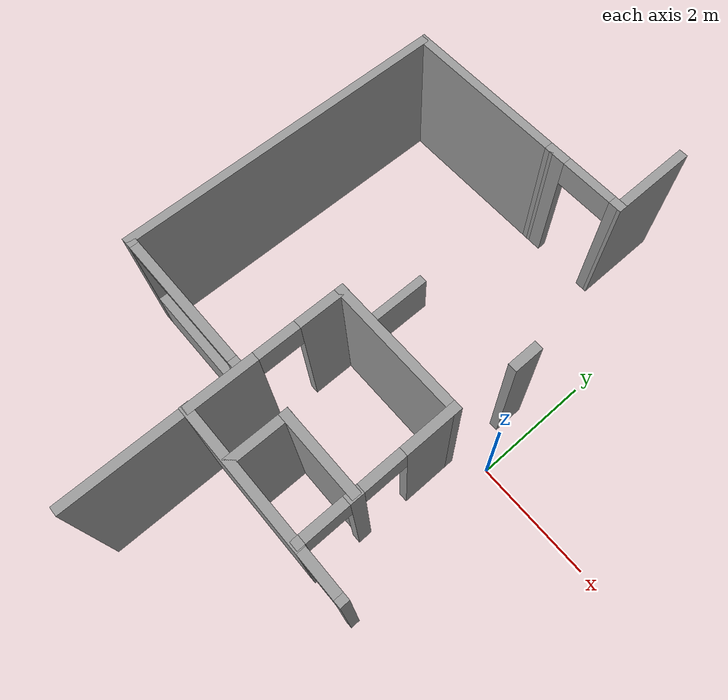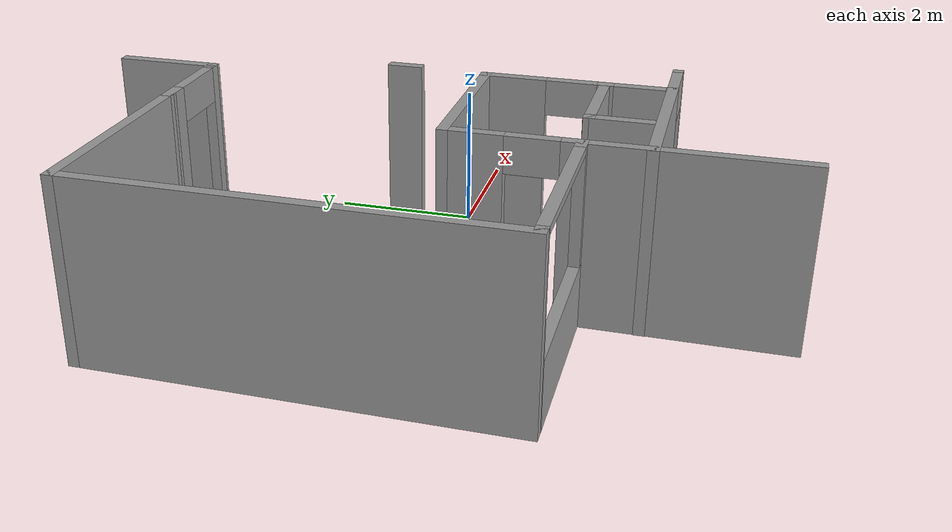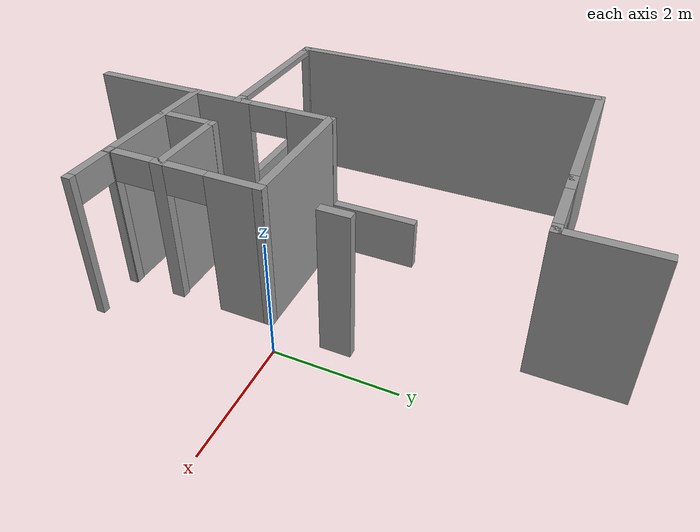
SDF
<sdf version="1.7">
 <model name="Myhouse">
  <link name="Wall_27">
   <pose>-1.25954 -2.94166 0 0 -0 0</pose>
   <visual name="Wall_27_Visual_0">
    <pose>-0.409905 0 1.25 0 -0 0</pose>
    <geometry><box><size>2.43019 0.15 2.5</size></box></geometry>
    <material>
     <script><uri>file://media/materials/scripts/gazebo.material</uri><name>Gazebo/Grey</name></script>
     <ambient>1 1 1 1</ambient>
     <shader type="pixel"/>
    </material>
    <meta><layer>0</layer></meta>
   </visual>
   <visual name="Wall_27_Visual_1">
    <pose>1.56509 0 1.25 0 -0 0</pose>
    <geometry><box><size>0.119811 0.15 2.5</size></box></geometry>
    <material>
     <script><uri>file://media/materials/scripts/gazebo.material</uri><name>Gazebo/Grey</name></script>
     <ambient>1 1 1 1</ambient>
     <shader type="pixel"/>
    </material>
    <meta><layer>0</layer></meta>
   </visual>
   <visual name="Wall_27_Visual_2">
    <pose>1.15519 0 2.25 0 -0 0</pose>
    <geometry><box><size>0.7 0.15 0.5</size></box></geometry>
    <material>
     <script><uri>file://media/materials/scripts/gazebo.material</uri><name>Gazebo/Grey</name></script>
     <ambient>1 1 1 1</ambient>
     <shader type="pixel"/>
    </material>
    <meta><layer>0</layer></meta>
   </visual>
   <collision name="Wall_27_Collision_0">
    <pose>-0.409905 0 1.25 0 -0 0</pose>
    <geometry><box><size>2.43019 0.15 2.5</size></box></geometry>
    <surface>
     <friction>
      <ode><mu>1</mu><mu2>1</mu2><fdir1>0 0 0</fdir1><slip1>0</slip1><slip2>0</slip2></ode>
      <torsional>
       <coefficient>1</coefficient>
       <patch_radius>0</patch_radius>
       <surface_radius>0</surface_radius>
       <use_patch_radius>1</use_patch_radius>
       <ode><slip>0</slip></ode>
      </torsional>
     </friction>
     <bounce><restitution_coefficient>0</restitution_coefficient><threshold>1e+06</threshold></bounce>
     <contact>
      <collide_without_contact>0</collide_without_contact>
      <collide_without_contact_bitmask>1</collide_without_contact_bitmask>
      <collide_bitmask>1</collide_bitmask>
      <ode>
       <soft_cfm>0</soft_cfm>
       <soft_erp>0.2</soft_erp>
       <kp>1e+13</kp>
       <kd>1</kd>
       <max_vel>0.01</max_vel>
       <min_depth>0</min_depth>
      </ode>
      <bullet>
       <split_impulse>1</split_impulse>
       <split_impulse_penetration_threshold>-0.01</split_impulse_penetration_threshold>
       <soft_cfm>0</soft_cfm>
       <soft_erp>0.2</soft_erp>
       <kp>1e+13</kp>
       <kd>1</kd>
      </bullet>
     </contact>
    </surface>
   </collision>
   <collision name="Wall_27_Collision_1">
    <pose>1.56509 0 1.25 0 -0 0</pose>
    <geometry><box><size>0.119811 0.15 2.5</size></box></geometry>
    <surface>
     <friction>
      <ode><mu>1</mu><mu2>1</mu2><fdir1>0 0 0</fdir1><slip1>0</slip1><slip2>0</slip2></ode>
      <torsional>
       <coefficient>1</coefficient>
       <patch_radius>0</patch_radius>
       <surface_radius>0</surface_radius>
       <use_patch_radius>1</use_patch_radius>
       <ode><slip>0</slip></ode>
      </torsional>
     </friction>
     <bounce><restitution_coefficient>0</restitution_coefficient><threshold>1e+06</threshold></bounce>
     <contact>
      <collide_without_contact>0</collide_without_contact>
      <collide_without_contact_bitmask>1</collide_without_contact_bitmask>
      <collide_bitmask>1</collide_bitmask>
      <ode>
       <soft_cfm>0</soft_cfm>
       <soft_erp>0.2</soft_erp>
       <kp>1e+13</kp>
       <kd>1</kd>
       <max_vel>0.01</max_vel>
       <min_depth>0</min_depth>
      </ode>
      <bullet>
       <split_impulse>1</split_impulse>
       <split_impulse_penetration_threshold>-0.01</split_impulse_penetration_threshold>
       <soft_cfm>0</soft_cfm>
       <soft_erp>0.2</soft_erp>
       <kp>1e+13</kp>
       <kd>1</kd>
      </bullet>
     </contact>
    </surface>
   </collision>
   <collision name="Wall_27_Collision_2">
    <pose>1.15519 0 2.25 0 -0 0</pose>
    <geometry><box><size>0.7 0.15 0.5</size></box></geometry>
    <surface>
     <friction>
      <ode><mu>1</mu><mu2>1</mu2><fdir1>0 0 0</fdir1><slip1>0</slip1><slip2>0</slip2></ode>
      <torsional>
       <coefficient>1</coefficient>
       <patch_radius>0</patch_radius>
       <surface_radius>0</surface_radius>
       <use_patch_radius>1</use_patch_radius>
       <ode><slip>0</slip></ode>
      </torsional>
     </friction>
     <bounce><restitution_coefficient>0</restitution_coefficient><threshold>1e+06</threshold></bounce>
     <contact>
      <collide_without_contact>0</collide_without_contact>
      <collide_without_contact_bitmask>1</collide_without_contact_bitmask>
      <collide_bitmask>1</collide_bitmask>
      <ode>
       <soft_cfm>0</soft_cfm>
       <soft_erp>0.2</soft_erp>
       <kp>1e+13</kp>
       <kd>1</kd>
       <max_vel>0.01</max_vel>
       <min_depth>0</min_depth>
      </ode>
      <bullet>
       <split_impulse>1</split_impulse>
       <split_impulse_penetration_threshold>-0.01</split_impulse_penetration_threshold>
       <soft_cfm>0</soft_cfm>
       <soft_erp>0.2</soft_erp>
       <kp>1e+13</kp>
       <kd>1</kd>
      </bullet>
     </contact>
    </surface>
   </collision>
  </link>
  <link name="Wall_33">
   <pose>-0.546419 -1.6345 0 0 -0 1.5708</pose>
   <visual name="Wall_33_Visual_0">
    <pose>-1.28707 0 1.25 0 -0 0</pose>
    <geometry><box><size>0.129459 0.15 2.5</size></box></geometry>
    <material>
     <script><uri>file://media/materials/scripts/gazebo.material</uri><name>Gazebo/Grey</name></script>
     <ambient>1 1 1 1</ambient>
     <shader type="pixel"/>
    </material>
    <meta><layer>0</layer></meta>
   </visual>
   <visual name="Wall_33_Visual_1">
    <pose>-0.408085 0 1.25 0 -0 0</pose>
    <geometry><box><size>0.228511 0.15 2.5</size></box></geometry>
    <material>
     <script><uri>file://media/materials/scripts/gazebo.material</uri><name>Gazebo/Grey</name></script>
     <ambient>1 1 1 1</ambient>
     <shader type="pixel"/>
    </material>
    <meta><layer>0</layer></meta>
   </visual>
   <visual name="Wall_33_Visual_2">
    <pose>0.878985 0 1.25 0 -0 0</pose>
    <geometry><box><size>0.945628 0.15 2.5</size></box></geometry>
    <material>
     <script><uri>file://media/materials/scripts/gazebo.material</uri><name>Gazebo/Grey</name></script>
     <ambient>1 1 1 1</ambient>
     <shader type="pixel"/>
    </material>
    <meta><layer>0</layer></meta>
   </visual>
   <visual name="Wall_33_Visual_3">
    <pose>-0.87234 0 2.25 0 -0 0</pose>
    <geometry><box><size>0.7 0.15 0.5</size></box></geometry>
    <material>
     <script><uri>file://media/materials/scripts/gazebo.material</uri><name>Gazebo/Grey</name></script>
     <ambient>1 1 1 1</ambient>
     <shader type="pixel"/>
    </material>
    <meta><layer>0</layer></meta>
   </visual>
   <visual name="Wall_33_Visual_4">
    <pose>0.05617 0 2.25 0 -0 0</pose>
    <geometry><box><size>0.7 0.15 0.5</size></box></geometry>
    <material>
     <script><uri>file://media/materials/scripts/gazebo.material</uri><name>Gazebo/Grey</name></script>
     <ambient>1 1 1 1</ambient>
     <shader type="pixel"/>
    </material>
    <meta><layer>0</layer></meta>
   </visual>
   <collision name="Wall_33_Collision_0">
    <pose>-1.28707 0 1.25 0 -0 0</pose>
    <geometry><box><size>0.129459 0.15 2.5</size></box></geometry>
    <surface>
     <friction>
      <ode><mu>1</mu><mu2>1</mu2><fdir1>0 0 0</fdir1><slip1>0</slip1><slip2>0</slip2></ode>
      <torsional>
       <coefficient>1</coefficient>
       <patch_radius>0</patch_radius>
       <surface_radius>0</surface_radius>
       <use_patch_radius>1</use_patch_radius>
       <ode><slip>0</slip></ode>
      </torsional>
     </friction>
     <bounce><restitution_coefficient>0</restitution_coefficient><threshold>1e+06</threshold></bounce>
     <contact>
      <collide_without_contact>0</collide_without_contact>
      <collide_without_contact_bitmask>1</collide_without_contact_bitmask>
      <collide_bitmask>1</collide_bitmask>
      <ode>
       <soft_cfm>0</soft_cfm>
       <soft_erp>0.2</soft_erp>
       <kp>1e+13</kp>
       <kd>1</kd>
       <max_vel>0.01</max_vel>
       <min_depth>0</min_depth>
      </ode>
      <bullet>
       <split_impulse>1</split_impulse>
       <split_impulse_penetration_threshold>-0.01</split_impulse_penetration_threshold>
       <soft_cfm>0</soft_cfm>
       <soft_erp>0.2</soft_erp>
       <kp>1e+13</kp>
       <kd>1</kd>
      </bullet>
     </contact>
    </surface>
   </collision>
   <collision name="Wall_33_Collision_1">
    <pose>-0.408085 0 1.25 0 -0 0</pose>
    <geometry><box><size>0.228511 0.15 2.5</size></box></geometry>
    <surface>
     <friction>
      <ode><mu>1</mu><mu2>1</mu2><fdir1>0 0 0</fdir1><slip1>0</slip1><slip2>0</slip2></ode>
      <torsional>
       <coefficient>1</coefficient>
       <patch_radius>0</patch_radius>
       <surface_radius>0</surface_radius>
       <use_patch_radius>1</use_patch_radius>
       <ode><slip>0</slip></ode>
      </torsional>
     </friction>
     <bounce><restitution_coefficient>0</restitution_coefficient><threshold>1e+06</threshold></bounce>
     <contact>
      <collide_without_contact>0</collide_without_contact>
      <collide_without_contact_bitmask>1</collide_without_contact_bitmask>
      <collide_bitmask>1</collide_bitmask>
      <ode>
       <soft_cfm>0</soft_cfm>
       <soft_erp>0.2</soft_erp>
       <kp>1e+13</kp>
       <kd>1</kd>
       <max_vel>0.01</max_vel>
       <min_depth>0</min_depth>
      </ode>
      <bullet>
       <split_impulse>1</split_impulse>
       <split_impulse_penetration_threshold>-0.01</split_impulse_penetration_threshold>
       <soft_cfm>0</soft_cfm>
       <soft_erp>0.2</soft_erp>
       <kp>1e+13</kp>
       <kd>1</kd>
      </bullet>
     </contact>
    </surface>
   </collision>
   <collision name="Wall_33_Collision_2">
    <pose>0.878985 0 1.25 0 -0 0</pose>
    <geometry><box><size>0.945628 0.15 2.5</size></box></geometry>
    <surface>
     <friction>
      <ode><mu>1</mu><mu2>1</mu2><fdir1>0 0 0</fdir1><slip1>0</slip1><slip2>0</slip2></ode>
      <torsional>
       <coefficient>1</coefficient>
       <patch_radius>0</patch_radius>
       <surface_radius>0</surface_radius>
       <use_patch_radius>1</use_patch_radius>
       <ode><slip>0</slip></ode>
      </torsional>
     </friction>
     <bounce><restitution_coefficient>0</restitution_coefficient><threshold>1e+06</threshold></bounce>
     <contact>
      <collide_without_contact>0</collide_without_contact>
      <collide_without_contact_bitmask>1</collide_without_contact_bitmask>
      <collide_bitmask>1</collide_bitmask>
      <ode>
       <soft_cfm>0</soft_cfm>
       <soft_erp>0.2</soft_erp>
       <kp>1e+13</kp>
       <kd>1</kd>
       <max_vel>0.01</max_vel>
       <min_depth>0</min_depth>
      </ode>
      <bullet>
       <split_impulse>1</split_impulse>
       <split_impulse_penetration_threshold>-0.01</split_impulse_penetration_threshold>
       <soft_cfm>0</soft_cfm>
       <soft_erp>0.2</soft_erp>
       <kp>1e+13</kp>
       <kd>1</kd>
      </bullet>
     </contact>
    </surface>
   </collision>
   <collision name="Wall_33_Collision_3">
    <pose>-0.87234 0 2.25 0 -0 0</pose>
    <geometry><box><size>0.7 0.15 0.5</size></box></geometry>
    <surface>
     <friction>
      <ode><mu>1</mu><mu2>1</mu2><fdir1>0 0 0</fdir1><slip1>0</slip1><slip2>0</slip2></ode>
      <torsional>
       <coefficient>1</coefficient>
       <patch_radius>0</patch_radius>
       <surface_radius>0</surface_radius>
       <use_patch_radius>1</use_patch_radius>
       <ode><slip>0</slip></ode>
      </torsional>
     </friction>
     <bounce><restitution_coefficient>0</restitution_coefficient><threshold>1e+06</threshold></bounce>
     <contact>
      <collide_without_contact>0</collide_without_contact>
      <collide_without_contact_bitmask>1</collide_without_contact_bitmask>
      <collide_bitmask>1</collide_bitmask>
      <ode>
       <soft_cfm>0</soft_cfm>
       <soft_erp>0.2</soft_erp>
       <kp>1e+13</kp>
       <kd>1</kd>
       <max_vel>0.01</max_vel>
       <min_depth>0</min_depth>
      </ode>
      <bullet>
       <split_impulse>1</split_impulse>
       <split_impulse_penetration_threshold>-0.01</split_impulse_penetration_threshold>
       <soft_cfm>0</soft_cfm>
       <soft_erp>0.2</soft_erp>
       <kp>1e+13</kp>
       <kd>1</kd>
      </bullet>
     </contact>
    </surface>
   </collision>
   <collision name="Wall_33_Collision_4">
    <pose>0.05617 0 2.25 0 -0 0</pose>
    <geometry><box><size>0.7 0.15 0.5</size></box></geometry>
    <surface>
     <friction>
      <ode><mu>1</mu><mu2>1</mu2><fdir1>0 0 0</fdir1><slip1>0</slip1><slip2>0</slip2></ode>
      <torsional>
       <coefficient>1</coefficient>
       <patch_radius>0</patch_radius>
       <surface_radius>0</surface_radius>
       <use_patch_radius>1</use_patch_radius>
       <ode><slip>0</slip></ode>
      </torsional>
     </friction>
     <bounce><restitution_coefficient>0</restitution_coefficient><threshold>1e+06</threshold></bounce>
     <contact>
      <collide_without_contact>0</collide_without_contact>
      <collide_without_contact_bitmask>1</collide_without_contact_bitmask>
      <collide_bitmask>1</collide_bitmask>
      <ode>
       <soft_cfm>0</soft_cfm>
       <soft_erp>0.2</soft_erp>
       <kp>1e+13</kp>
       <kd>1</kd>
       <max_vel>0.01</max_vel>
       <min_depth>0</min_depth>
      </ode>
      <bullet>
       <split_impulse>1</split_impulse>
       <split_impulse_penetration_threshold>-0.01</split_impulse_penetration_threshold>
       <soft_cfm>0</soft_cfm>
       <soft_erp>0.2</soft_erp>
       <kp>1e+13</kp>
       <kd>1</kd>
      </bullet>
     </contact>
    </surface>
   </collision>
  </link>
  <link name="Wall_34">
   <pose>-1.67392 -0.359359 0 0 -0 3.14115</pose>
   <visual name="Wall_34_Visual">
    <pose>0 0 1.25 0 -0 0</pose>
    <geometry><box><size>2.40523 0.15 2.5</size></box></geometry>
    <material>
     <script><uri>file://media/materials/scripts/gazebo.material</uri><name>Gazebo/Grey</name></script>
     <ambient>1 1 1 1</ambient>
     <shader type="pixel"/>
    </material>
    <meta><layer>0</layer></meta>
   </visual>
   <collision name="Wall_34_Collision">
    <pose>0 0 1.25 0 -0 0</pose>
    <geometry><box><size>2.40523 0.15 2.5</size></box></geometry>
    <surface>
     <friction>
      <ode><mu>1</mu><mu2>1</mu2><fdir1>0 0 0</fdir1><slip1>0</slip1><slip2>0</slip2></ode>
      <torsional>
       <coefficient>1</coefficient>
       <patch_radius>0</patch_radius>
       <surface_radius>0</surface_radius>
       <use_patch_radius>1</use_patch_radius>
       <ode><slip>0</slip></ode>
      </torsional>
     </friction>
     <bounce><restitution_coefficient>0</restitution_coefficient><threshold>1e+06</threshold></bounce>
     <contact>
      <collide_without_contact>0</collide_without_contact>
      <collide_without_contact_bitmask>1</collide_without_contact_bitmask>
      <collide_bitmask>1</collide_bitmask>
      <ode>
       <soft_cfm>0</soft_cfm>
       <soft_erp>0.2</soft_erp>
       <kp>1e+13</kp>
       <kd>1</kd>
       <max_vel>0.01</max_vel>
       <min_depth>0</min_depth>
      </ode>
      <bullet>
       <split_impulse>1</split_impulse>
       <split_impulse_penetration_threshold>-0.01</split_impulse_penetration_threshold>
       <soft_cfm>0</soft_cfm>
       <soft_erp>0.2</soft_erp>
       <kp>1e+13</kp>
       <kd>1</kd>
      </bullet>
     </contact>
    </surface>
   </collision>
  </link>
  <link name="Wall_36">
   <pose>-1.89581 -2.48259 0 0 -0 1.56946</pose>
   <visual name="Wall_36_Visual">
    <pose>0 0 1.25 0 -0 0</pose>
    <geometry><box><size>1.05743 0.15 2.5</size></box></geometry>
    <material>
     <script><uri>file://media/materials/scripts/gazebo.material</uri><name>Gazebo/Grey</name></script>
     <ambient>1 1 1 1</ambient>
     <shader type="pixel"/>
    </material>
    <meta><layer>0</layer></meta>
   </visual>
   <collision name="Wall_36_Collision">
    <pose>0 0 1.25 0 -0 0</pose>
    <geometry><box><size>1.05743 0.15 2.5</size></box></geometry>
    <surface>
     <friction>
      <ode><mu>1</mu><mu2>1</mu2><fdir1>0 0 0</fdir1><slip1>0</slip1><slip2>0</slip2></ode>
      <torsional>
       <coefficient>1</coefficient>
       <patch_radius>0</patch_radius>
       <surface_radius>0</surface_radius>
       <use_patch_radius>1</use_patch_radius>
       <ode><slip>0</slip></ode>
      </torsional>
     </friction>
     <bounce><restitution_coefficient>0</restitution_coefficient><threshold>1e+06</threshold></bounce>
     <contact>
      <collide_without_contact>0</collide_without_contact>
      <collide_without_contact_bitmask>1</collide_without_contact_bitmask>
      <collide_bitmask>1</collide_bitmask>
      <ode>
       <soft_cfm>0</soft_cfm>
       <soft_erp>0.2</soft_erp>
       <kp>1e+13</kp>
       <kd>1</kd>
       <max_vel>0.01</max_vel>
       <min_depth>0</min_depth>
      </ode>
      <bullet>
       <split_impulse>1</split_impulse>
       <split_impulse_penetration_threshold>-0.01</split_impulse_penetration_threshold>
       <soft_cfm>0</soft_cfm>
       <soft_erp>0.2</soft_erp>
       <kp>1e+13</kp>
       <kd>1</kd>
      </bullet>
     </contact>
    </surface>
   </collision>
  </link>
  <link name="Wall_37">
   <pose>-1.23271 -2.03135 0 0 -0 0</pose>
   <visual name="Wall_37_Visual">
    <pose>0 0 1.25 0 -0 0</pose>
    <geometry><box><size>1.475 0.15 2.5</size></box></geometry>
    <material>
     <script><uri>file://media/materials/scripts/gazebo.material</uri><name>Gazebo/Grey</name></script>
     <ambient>1 1 1 1</ambient>
     <shader type="pixel"/>
    </material>
    <meta><layer>0</layer></meta>
   </visual>
   <collision name="Wall_37_Collision">
    <pose>0 0 1.25 0 -0 0</pose>
    <geometry><box><size>1.475 0.15 2.5</size></box></geometry>
    <surface>
     <friction>
      <ode><mu>1</mu><mu2>1</mu2><fdir1>0 0 0</fdir1><slip1>0</slip1><slip2>0</slip2></ode>
      <torsional>
       <coefficient>1</coefficient>
       <patch_radius>0</patch_radius>
       <surface_radius>0</surface_radius>
       <use_patch_radius>1</use_patch_radius>
       <ode><slip>0</slip></ode>
      </torsional>
     </friction>
     <bounce><restitution_coefficient>0</restitution_coefficient><threshold>1e+06</threshold></bounce>
     <contact>
      <collide_without_contact>0</collide_without_contact>
      <collide_without_contact_bitmask>1</collide_without_contact_bitmask>
      <collide_bitmask>1</collide_bitmask>
      <ode>
       <soft_cfm>0</soft_cfm>
       <soft_erp>0.2</soft_erp>
       <kp>1e+13</kp>
       <kd>1</kd>
       <max_vel>0.01</max_vel>
       <min_depth>0</min_depth>
      </ode>
      <bullet>
       <split_impulse>1</split_impulse>
       <split_impulse_penetration_threshold>-0.01</split_impulse_penetration_threshold>
       <soft_cfm>0</soft_cfm>
       <soft_erp>0.2</soft_erp>
       <kp>1e+13</kp>
       <kd>1</kd>
      </bullet>
     </contact>
    </surface>
   </collision>
  </link>
  <link name="Wall_39">
   <pose>-2.80142 0.383496 0 0 -0 1.5708</pose>
   <visual name="Wall_39_Visual">
    <pose>0 0 0.45 0 -0 0</pose>
    <geometry><box><size>1.6304 0.15 0.9</size></box></geometry>
    <material>
     <script><uri>file://media/materials/scripts/gazebo.material</uri><name>Gazebo/Grey</name></script>
     <ambient>1 1 1 1</ambient>
     <shader type="pixel"/>
    </material>
    <meta><layer>0</layer></meta>
   </visual>
   <collision name="Wall_39_Collision">
    <pose>0 0 0.45 0 -0 0</pose>
    <geometry><box><size>1.6304 0.15 0.9</size></box></geometry>
    <surface>
     <friction>
      <ode><mu>1</mu><mu2>1</mu2><fdir1>0 0 0</fdir1><slip1>0</slip1><slip2>0</slip2></ode>
      <torsional>
       <coefficient>1</coefficient>
       <patch_radius>0</patch_radius>
       <surface_radius>0</surface_radius>
       <use_patch_radius>1</use_patch_radius>
       <ode><slip>0</slip></ode>
      </torsional>
     </friction>
     <bounce><restitution_coefficient>0</restitution_coefficient><threshold>1e+06</threshold></bounce>
     <contact>
      <collide_without_contact>0</collide_without_contact>
      <collide_without_contact_bitmask>1</collide_without_contact_bitmask>
      <collide_bitmask>1</collide_bitmask>
      <ode>
       <soft_cfm>0</soft_cfm>
       <soft_erp>0.2</soft_erp>
       <kp>1e+13</kp>
       <kd>1</kd>
       <max_vel>0.01</max_vel>
       <min_depth>0</min_depth>
      </ode>
      <bullet>
       <split_impulse>1</split_impulse>
       <split_impulse_penetration_threshold>-0.01</split_impulse_penetration_threshold>
       <soft_cfm>0</soft_cfm>
       <soft_erp>0.2</soft_erp>
       <kp>1e+13</kp>
       <kd>1</kd>
      </bullet>
     </contact>
    </surface>
   </collision>
  </link>
  <link name="Wall_43">
   <pose>-5.40164 0.709209 0 0 0 -1.5708</pose>
   <visual name="Wall_43_Visual">
    <pose>0 0 1.25 0 -0 0</pose>
    <geometry><box><size>5.75 0.15 2.5</size></box></geometry>
    <material>
     <script><uri>file://media/materials/scripts/gazebo.material</uri><name>Gazebo/Grey</name></script>
     <ambient>1 1 1 1</ambient>
     <shader type="pixel"/>
    </material>
    <meta><layer>0</layer></meta>
   </visual>
   <collision name="Wall_43_Collision">
    <pose>0 0 1.25 0 -0 0</pose>
    <geometry><box><size>5.75 0.15 2.5</size></box></geometry>
    <surface>
     <friction>
      <ode><mu>1</mu><mu2>1</mu2><fdir1>0 0 0</fdir1><slip1>0</slip1><slip2>0</slip2></ode>
      <torsional>
       <coefficient>1</coefficient>
       <patch_radius>0</patch_radius>
       <surface_radius>0</surface_radius>
       <use_patch_radius>1</use_patch_radius>
       <ode><slip>0</slip></ode>
      </torsional>
     </friction>
     <bounce><restitution_coefficient>0</restitution_coefficient><threshold>1e+06</threshold></bounce>
     <contact>
      <collide_without_contact>0</collide_without_contact>
      <collide_without_contact_bitmask>1</collide_without_contact_bitmask>
      <collide_bitmask>1</collide_bitmask>
      <ode>
       <soft_cfm>0</soft_cfm>
       <soft_erp>0.2</soft_erp>
       <kp>1e+13</kp>
       <kd>1</kd>
       <max_vel>0.01</max_vel>
       <min_depth>0</min_depth>
      </ode>
      <bullet>
       <split_impulse>1</split_impulse>
       <split_impulse_penetration_threshold>-0.01</split_impulse_penetration_threshold>
       <soft_cfm>0</soft_cfm>
       <soft_erp>0.2</soft_erp>
       <kp>1e+13</kp>
       <kd>1</kd>
      </bullet>
     </contact>
    </surface>
   </collision>
  </link>
  <link name="Wall_44">
   <pose>-4.10164 -2.09079 0 0 -0 0</pose>
   <visual name="Wall_44_Visual_0">
    <pose>-1.27764 0 1.25 0 -0 0</pose>
    <geometry><box><size>0.194724 0.15 2.5</size></box></geometry>
    <material>
     <script><uri>file://media/materials/scripts/gazebo.material</uri><name>Gazebo/Grey</name></script>
     <ambient>1 1 1 1</ambient>
     <shader type="pixel"/>
    </material>
    <meta><layer>0</layer></meta>
   </visual>
   <visual name="Wall_44_Visual_1">
    <pose>0.097362 0 0.45 0 -0 0</pose>
    <geometry><box><size>2.55528 0.15 0.9</size></box></geometry>
    <material>
     <script><uri>file://media/materials/scripts/gazebo.material</uri><name>Gazebo/Grey</name></script>
     <ambient>1 1 1 1</ambient>
     <shader type="pixel"/>
    </material>
    <meta><layer>0</layer></meta>
   </visual>
   <visual name="Wall_44_Visual_2">
    <pose>1.24736 0 1.7 0 -0 0</pose>
    <geometry><box><size>0.255276 0.15 1.6</size></box></geometry>
    <material>
     <script><uri>file://media/materials/scripts/gazebo.material</uri><name>Gazebo/Grey</name></script>
     <ambient>1 1 1 1</ambient>
     <shader type="pixel"/>
    </material>
    <meta><layer>0</layer></meta>
   </visual>
   <visual name="Wall_44_Visual_3">
    <pose>-0.030276 0 2.45 0 -0 0</pose>
    <geometry><box><size>2.3 0.15 0.1</size></box></geometry>
    <material>
     <script><uri>file://media/materials/scripts/gazebo.material</uri><name>Gazebo/Grey</name></script>
     <ambient>1 1 1 1</ambient>
     <shader type="pixel"/>
    </material>
    <meta><layer>0</layer></meta>
   </visual>
   <collision name="Wall_44_Collision_0">
    <pose>-1.27764 0 1.25 0 -0 0</pose>
    <geometry><box><size>0.194724 0.15 2.5</size></box></geometry>
    <surface>
     <friction>
      <ode><mu>1</mu><mu2>1</mu2><fdir1>0 0 0</fdir1><slip1>0</slip1><slip2>0</slip2></ode>
      <torsional>
       <coefficient>1</coefficient>
       <patch_radius>0</patch_radius>
       <surface_radius>0</surface_radius>
       <use_patch_radius>1</use_patch_radius>
       <ode><slip>0</slip></ode>
      </torsional>
     </friction>
     <bounce><restitution_coefficient>0</restitution_coefficient><threshold>1e+06</threshold></bounce>
     <contact>
      <collide_without_contact>0</collide_without_contact>
      <collide_without_contact_bitmask>1</collide_without_contact_bitmask>
      <collide_bitmask>1</collide_bitmask>
      <ode>
       <soft_cfm>0</soft_cfm>
       <soft_erp>0.2</soft_erp>
       <kp>1e+13</kp>
       <kd>1</kd>
       <max_vel>0.01</max_vel>
       <min_depth>0</min_depth>
      </ode>
      <bullet>
       <split_impulse>1</split_impulse>
       <split_impulse_penetration_threshold>-0.01</split_impulse_penetration_threshold>
       <soft_cfm>0</soft_cfm>
       <soft_erp>0.2</soft_erp>
       <kp>1e+13</kp>
       <kd>1</kd>
      </bullet>
     </contact>
    </surface>
   </collision>
   <collision name="Wall_44_Collision_1">
    <pose>0.097362 0 0.45 0 -0 0</pose>
    <geometry><box><size>2.55528 0.15 0.9</size></box></geometry>
    <surface>
     <friction>
      <ode><mu>1</mu><mu2>1</mu2><fdir1>0 0 0</fdir1><slip1>0</slip1><slip2>0</slip2></ode>
      <torsional>
       <coefficient>1</coefficient>
       <patch_radius>0</patch_radius>
       <surface_radius>0</surface_radius>
       <use_patch_radius>1</use_patch_radius>
       <ode><slip>0</slip></ode>
      </torsional>
     </friction>
     <bounce><restitution_coefficient>0</restitution_coefficient><threshold>1e+06</threshold></bounce>
     <contact>
      <collide_without_contact>0</collide_without_contact>
      <collide_without_contact_bitmask>1</collide_without_contact_bitmask>
      <collide_bitmask>1</collide_bitmask>
      <ode>
       <soft_cfm>0</soft_cfm>
       <soft_erp>0.2</soft_erp>
       <kp>1e+13</kp>
       <kd>1</kd>
       <max_vel>0.01</max_vel>
       <min_depth>0</min_depth>
      </ode>
      <bullet>
       <split_impulse>1</split_impulse>
       <split_impulse_penetration_threshold>-0.01</split_impulse_penetration_threshold>
       <soft_cfm>0</soft_cfm>
       <soft_erp>0.2</soft_erp>
       <kp>1e+13</kp>
       <kd>1</kd>
      </bullet>
     </contact>
    </surface>
   </collision>
   <collision name="Wall_44_Collision_2">
    <pose>1.24736 0 1.7 0 -0 0</pose>
    <geometry><box><size>0.255276 0.15 1.6</size></box></geometry>
    <surface>
     <friction>
      <ode><mu>1</mu><mu2>1</mu2><fdir1>0 0 0</fdir1><slip1>0</slip1><slip2>0</slip2></ode>
      <torsional>
       <coefficient>1</coefficient>
       <patch_radius>0</patch_radius>
       <surface_radius>0</surface_radius>
       <use_patch_radius>1</use_patch_radius>
       <ode><slip>0</slip></ode>
      </torsional>
     </friction>
     <bounce><restitution_coefficient>0</restitution_coefficient><threshold>1e+06</threshold></bounce>
     <contact>
      <collide_without_contact>0</collide_without_contact>
      <collide_without_contact_bitmask>1</collide_without_contact_bitmask>
      <collide_bitmask>1</collide_bitmask>
      <ode>
       <soft_cfm>0</soft_cfm>
       <soft_erp>0.2</soft_erp>
       <kp>1e+13</kp>
       <kd>1</kd>
       <max_vel>0.01</max_vel>
       <min_depth>0</min_depth>
      </ode>
      <bullet>
       <split_impulse>1</split_impulse>
       <split_impulse_penetration_threshold>-0.01</split_impulse_penetration_threshold>
       <soft_cfm>0</soft_cfm>
       <soft_erp>0.2</soft_erp>
       <kp>1e+13</kp>
       <kd>1</kd>
      </bullet>
     </contact>
    </surface>
   </collision>
   <collision name="Wall_44_Collision_3">
    <pose>-0.030276 0 2.45 0 -0 0</pose>
    <geometry><box><size>2.3 0.15 0.1</size></box></geometry>
    <surface>
     <friction>
      <ode><mu>1</mu><mu2>1</mu2><fdir1>0 0 0</fdir1><slip1>0</slip1><slip2>0</slip2></ode>
      <torsional>
       <coefficient>1</coefficient>
       <patch_radius>0</patch_radius>
       <surface_radius>0</surface_radius>
       <use_patch_radius>1</use_patch_radius>
       <ode><slip>0</slip></ode>
      </torsional>
     </friction>
     <bounce><restitution_coefficient>0</restitution_coefficient><threshold>1e+06</threshold></bounce>
     <contact>
      <collide_without_contact>0</collide_without_contact>
      <collide_without_contact_bitmask>1</collide_without_contact_bitmask>
      <collide_bitmask>1</collide_bitmask>
      <ode>
       <soft_cfm>0</soft_cfm>
       <soft_erp>0.2</soft_erp>
       <kp>1e+13</kp>
       <kd>1</kd>
       <max_vel>0.01</max_vel>
       <min_depth>0</min_depth>
      </ode>
      <bullet>
       <split_impulse>1</split_impulse>
       <split_impulse_penetration_threshold>-0.01</split_impulse_penetration_threshold>
       <soft_cfm>0</soft_cfm>
       <soft_erp>0.2</soft_erp>
       <kp>1e+13</kp>
       <kd>1</kd>
      </bullet>
     </contact>
    </surface>
   </collision>
  </link>
  <link name="Wall_49">
   <pose>-3.97664 3.50921 0 0 -0 0</pose>
   <visual name="Wall_49_Visual">
    <pose>0 0 1.25 0 -0 0</pose>
    <geometry><box><size>3 0.15 2.5</size></box></geometry>
    <material>
     <script><uri>file://media/materials/scripts/gazebo.material</uri><name>Gazebo/Grey</name></script>
     <ambient>1 1 1 1</ambient>
     <shader type="pixel"/>
    </material>
    <meta><layer>0</layer></meta>
   </visual>
   <collision name="Wall_49_Collision">
    <pose>0 0 1.25 0 -0 0</pose>
    <geometry><box><size>3 0.15 2.5</size></box></geometry>
    <surface>
     <friction>
      <ode><mu>1</mu><mu2>1</mu2><fdir1>0 0 0</fdir1><slip1>0</slip1><slip2>0</slip2></ode>
      <torsional>
       <coefficient>1</coefficient>
       <patch_radius>0</patch_radius>
       <surface_radius>0</surface_radius>
       <use_patch_radius>1</use_patch_radius>
       <ode><slip>0</slip></ode>
      </torsional>
     </friction>
     <bounce><restitution_coefficient>0</restitution_coefficient><threshold>1e+06</threshold></bounce>
     <contact>
      <collide_without_contact>0</collide_without_contact>
      <collide_without_contact_bitmask>1</collide_without_contact_bitmask>
      <collide_bitmask>1</collide_bitmask>
      <ode>
       <soft_cfm>0</soft_cfm>
       <soft_erp>0.2</soft_erp>
       <kp>1e+13</kp>
       <kd>1</kd>
       <max_vel>0.01</max_vel>
       <min_depth>0</min_depth>
      </ode>
      <bullet>
       <split_impulse>1</split_impulse>
       <split_impulse_penetration_threshold>-0.01</split_impulse_penetration_threshold>
       <soft_cfm>0</soft_cfm>
       <soft_erp>0.2</soft_erp>
       <kp>1e+13</kp>
       <kd>1</kd>
      </bullet>
     </contact>
    </surface>
   </collision>
  </link>
  <link name="Wall_50">
   <pose>-1.87653 3.50945 0 0 -0 0.000362</pose>
   <visual name="Wall_50_Visual_0">
    <pose>-0.558724 0 1.25 0 -0 0</pose>
    <geometry><box><size>0.382552 0.15 2.5</size></box></geometry>
    <material>
     <script><uri>file://media/materials/scripts/gazebo.material</uri><name>Gazebo/Grey</name></script>
     <ambient>1 1 1 1</ambient>
     <shader type="pixel"/>
    </material>
    <meta><layer>0</layer></meta>
   </visual>
   <visual name="Wall_50_Visual_1">
    <pose>0.641276 0 1.25 0 -0 0</pose>
    <geometry><box><size>0.217448 0.15 2.5</size></box></geometry>
    <material>
     <script><uri>file://media/materials/scripts/gazebo.material</uri><name>Gazebo/Grey</name></script>
     <ambient>1 1 1 1</ambient>
     <shader type="pixel"/>
    </material>
    <meta><layer>0</layer></meta>
   </visual>
   <visual name="Wall_50_Visual_2">
    <pose>0.082552 0 2.25 0 -0 0</pose>
    <geometry><box><size>0.9 0.15 0.5</size></box></geometry>
    <material>
     <script><uri>file://media/materials/scripts/gazebo.material</uri><name>Gazebo/Grey</name></script>
     <ambient>1 1 1 1</ambient>
     <shader type="pixel"/>
    </material>
    <meta><layer>0</layer></meta>
   </visual>
   <collision name="Wall_50_Collision_0">
    <pose>-0.558724 0 1.25 0 -0 0</pose>
    <geometry><box><size>0.382552 0.15 2.5</size></box></geometry>
    <surface>
     <friction>
      <ode><mu>1</mu><mu2>1</mu2><fdir1>0 0 0</fdir1><slip1>0</slip1><slip2>0</slip2></ode>
      <torsional>
       <coefficient>1</coefficient>
       <patch_radius>0</patch_radius>
       <surface_radius>0</surface_radius>
       <use_patch_radius>1</use_patch_radius>
       <ode><slip>0</slip></ode>
      </torsional>
     </friction>
     <bounce><restitution_coefficient>0</restitution_coefficient><threshold>1e+06</threshold></bounce>
     <contact>
      <collide_without_contact>0</collide_without_contact>
      <collide_without_contact_bitmask>1</collide_without_contact_bitmask>
      <collide_bitmask>1</collide_bitmask>
      <ode>
       <soft_cfm>0</soft_cfm>
       <soft_erp>0.2</soft_erp>
       <kp>1e+13</kp>
       <kd>1</kd>
       <max_vel>0.01</max_vel>
       <min_depth>0</min_depth>
      </ode>
      <bullet>
       <split_impulse>1</split_impulse>
       <split_impulse_penetration_threshold>-0.01</split_impulse_penetration_threshold>
       <soft_cfm>0</soft_cfm>
       <soft_erp>0.2</soft_erp>
       <kp>1e+13</kp>
       <kd>1</kd>
      </bullet>
     </contact>
    </surface>
   </collision>
   <collision name="Wall_50_Collision_1">
    <pose>0.641276 0 1.25 0 -0 0</pose>
    <geometry><box><size>0.217448 0.15 2.5</size></box></geometry>
    <surface>
     <friction>
      <ode><mu>1</mu><mu2>1</mu2><fdir1>0 0 0</fdir1><slip1>0</slip1><slip2>0</slip2></ode>
      <torsional>
       <coefficient>1</coefficient>
       <patch_radius>0</patch_radius>
       <surface_radius>0</surface_radius>
       <use_patch_radius>1</use_patch_radius>
       <ode><slip>0</slip></ode>
      </torsional>
     </friction>
     <bounce><restitution_coefficient>0</restitution_coefficient><threshold>1e+06</threshold></bounce>
     <contact>
      <collide_without_contact>0</collide_without_contact>
      <collide_without_contact_bitmask>1</collide_without_contact_bitmask>
      <collide_bitmask>1</collide_bitmask>
      <ode>
       <soft_cfm>0</soft_cfm>
       <soft_erp>0.2</soft_erp>
       <kp>1e+13</kp>
       <kd>1</kd>
       <max_vel>0.01</max_vel>
       <min_depth>0</min_depth>
      </ode>
      <bullet>
       <split_impulse>1</split_impulse>
       <split_impulse_penetration_threshold>-0.01</split_impulse_penetration_threshold>
       <soft_cfm>0</soft_cfm>
       <soft_erp>0.2</soft_erp>
       <kp>1e+13</kp>
       <kd>1</kd>
      </bullet>
     </contact>
    </surface>
   </collision>
   <collision name="Wall_50_Collision_2">
    <pose>0.082552 0 2.25 0 -0 0</pose>
    <geometry><box><size>0.9 0.15 0.5</size></box></geometry>
    <surface>
     <friction>
      <ode><mu>1</mu><mu2>1</mu2><fdir1>0 0 0</fdir1><slip1>0</slip1><slip2>0</slip2></ode>
      <torsional>
       <coefficient>1</coefficient>
       <patch_radius>0</patch_radius>
       <surface_radius>0</surface_radius>
       <use_patch_radius>1</use_patch_radius>
       <ode><slip>0</slip></ode>
      </torsional>
     </friction>
     <bounce><restitution_coefficient>0</restitution_coefficient><threshold>1e+06</threshold></bounce>
     <contact>
      <collide_without_contact>0</collide_without_contact>
      <collide_without_contact_bitmask>1</collide_without_contact_bitmask>
      <collide_bitmask>1</collide_bitmask>
      <ode>
       <soft_cfm>0</soft_cfm>
       <soft_erp>0.2</soft_erp>
       <kp>1e+13</kp>
       <kd>1</kd>
       <max_vel>0.01</max_vel>
       <min_depth>0</min_depth>
      </ode>
      <bullet>
       <split_impulse>1</split_impulse>
       <split_impulse_penetration_threshold>-0.01</split_impulse_penetration_threshold>
       <soft_cfm>0</soft_cfm>
       <soft_erp>0.2</soft_erp>
       <kp>1e+13</kp>
       <kd>1</kd>
      </bullet>
     </contact>
    </surface>
   </collision>
  </link>
  <link name="Wall_51">
   <pose>-1.20142 4.1752 0 0 -0 1.5708</pose>
   <visual name="Wall_51_Visual">
    <pose>0 0 1.25 0 -0 0</pose>
    <geometry><box><size>1.481 0.15 2.5</size></box></geometry>
    <material>
     <script><uri>file://media/materials/scripts/gazebo.material</uri><name>Gazebo/Grey</name></script>
     <ambient>1 1 1 1</ambient>
     <shader type="pixel"/>
    </material>
    <meta><layer>0</layer></meta>
   </visual>
   <collision name="Wall_51_Collision">
    <pose>0 0 1.25 0 -0 0</pose>
    <geometry><box><size>1.481 0.15 2.5</size></box></geometry>
    <surface>
     <friction>
      <ode><mu>1</mu><mu2>1</mu2><fdir1>0 0 0</fdir1><slip1>0</slip1><slip2>0</slip2></ode>
      <torsional>
       <coefficient>1</coefficient>
       <patch_radius>0</patch_radius>
       <surface_radius>0</surface_radius>
       <use_patch_radius>1</use_patch_radius>
       <ode><slip>0</slip></ode>
      </torsional>
     </friction>
     <bounce><restitution_coefficient>0</restitution_coefficient><threshold>1e+06</threshold></bounce>
     <contact>
      <collide_without_contact>0</collide_without_contact>
      <collide_without_contact_bitmask>1</collide_without_contact_bitmask>
      <collide_bitmask>1</collide_bitmask>
      <ode>
       <soft_cfm>0</soft_cfm>
       <soft_erp>0.2</soft_erp>
       <kp>1e+13</kp>
       <kd>1</kd>
       <max_vel>0.01</max_vel>
       <min_depth>0</min_depth>
      </ode>
      <bullet>
       <split_impulse>1</split_impulse>
       <split_impulse_penetration_threshold>-0.01</split_impulse_penetration_threshold>
       <soft_cfm>0</soft_cfm>
       <soft_erp>0.2</soft_erp>
       <kp>1e+13</kp>
       <kd>1</kd>
      </bullet>
     </contact>
    </surface>
   </collision>
  </link>
  <link name="Wall_53">
   <pose>-0.444857 0.834209 0 0 0 -1.5708</pose>
   <visual name="Wall_53_Visual">
    <pose>0 0 1.25 0 -0 0</pose>
    <geometry><box><size>0.5 0.15 2.5</size></box></geometry>
    <material>
     <script><uri>file://media/materials/scripts/gazebo.material</uri><name>Gazebo/Grey</name></script>
     <ambient>1 1 1 1</ambient>
     <shader type="pixel"/>
    </material>
    <meta><layer>0</layer></meta>
   </visual>
   <collision name="Wall_53_Collision">
    <pose>0 0 1.25 0 -0 0</pose>
    <geometry><box><size>0.5 0.15 2.5</size></box></geometry>
    <surface>
     <friction>
      <ode><mu>1</mu><mu2>1</mu2><fdir1>0 0 0</fdir1><slip1>0</slip1><slip2>0</slip2></ode>
      <torsional>
       <coefficient>1</coefficient>
       <patch_radius>0</patch_radius>
       <surface_radius>0</surface_radius>
       <use_patch_radius>1</use_patch_radius>
       <ode><slip>0</slip></ode>
      </torsional>
     </friction>
     <bounce><restitution_coefficient>0</restitution_coefficient><threshold>1e+06</threshold></bounce>
     <contact>
      <collide_without_contact>0</collide_without_contact>
      <collide_without_contact_bitmask>1</collide_without_contact_bitmask>
      <collide_bitmask>1</collide_bitmask>
      <ode>
       <soft_cfm>0</soft_cfm>
       <soft_erp>0.2</soft_erp>
       <kp>1e+13</kp>
       <kd>1</kd>
       <max_vel>0.01</max_vel>
       <min_depth>0</min_depth>
      </ode>
      <bullet>
       <split_impulse>1</split_impulse>
       <split_impulse_penetration_threshold>-0.01</split_impulse_penetration_threshold>
       <soft_cfm>0</soft_cfm>
       <soft_erp>0.2</soft_erp>
       <kp>1e+13</kp>
       <kd>1</kd>
      </bullet>
     </contact>
    </surface>
   </collision>
  </link>
  <link name="Wall_8">
   <pose>-2.80153 -2.59875 0 0 -0 1.57075</pose>
   <visual name="Wall_8_Visual_0">
    <pose>-0.776988 0 1.25 0 -0 0</pose>
    <geometry><box><size>3.08011 0.15 2.5</size></box></geometry>
    <material>
     <script><uri>file://media/materials/scripts/gazebo.material</uri><name>Gazebo/Grey</name></script>
     <ambient>1 1 1 1</ambient>
     <shader type="pixel"/>
    </material>
    <meta><layer>0</layer></meta>
   </visual>
   <visual name="Wall_8_Visual_1">
    <pose>1.89006 0 1.25 0 -0 0</pose>
    <geometry><box><size>0.853976 0.15 2.5</size></box></geometry>
    <material>
     <script><uri>file://media/materials/scripts/gazebo.material</uri><name>Gazebo/Grey</name></script>
     <ambient>1 1 1 1</ambient>
     <shader type="pixel"/>
    </material>
    <meta><layer>0</layer></meta>
   </visual>
   <visual name="Wall_8_Visual_2">
    <pose>1.11307 0 2.25 0 -0 0</pose>
    <geometry><box><size>0.7 0.15 0.5</size></box></geometry>
    <material>
     <script><uri>file://media/materials/scripts/gazebo.material</uri><name>Gazebo/Grey</name></script>
     <ambient>1 1 1 1</ambient>
     <shader type="pixel"/>
    </material>
    <meta><layer>0</layer></meta>
   </visual>
   <collision name="Wall_8_Collision_0">
    <pose>-0.776988 0 1.25 0 -0 0</pose>
    <geometry><box><size>3.08011 0.15 2.5</size></box></geometry>
    <surface>
     <friction>
      <ode><mu>1</mu><mu2>1</mu2><fdir1>0 0 0</fdir1><slip1>0</slip1><slip2>0</slip2></ode>
      <torsional>
       <coefficient>1</coefficient>
       <patch_radius>0</patch_radius>
       <surface_radius>0</surface_radius>
       <use_patch_radius>1</use_patch_radius>
       <ode><slip>0</slip></ode>
      </torsional>
     </friction>
     <bounce><restitution_coefficient>0</restitution_coefficient><threshold>1e+06</threshold></bounce>
     <contact>
      <collide_without_contact>0</collide_without_contact>
      <collide_without_contact_bitmask>1</collide_without_contact_bitmask>
      <collide_bitmask>1</collide_bitmask>
      <ode>
       <soft_cfm>0</soft_cfm>
       <soft_erp>0.2</soft_erp>
       <kp>1e+13</kp>
       <kd>1</kd>
       <max_vel>0.01</max_vel>
       <min_depth>0</min_depth>
      </ode>
      <bullet>
       <split_impulse>1</split_impulse>
       <split_impulse_penetration_threshold>-0.01</split_impulse_penetration_threshold>
       <soft_cfm>0</soft_cfm>
       <soft_erp>0.2</soft_erp>
       <kp>1e+13</kp>
       <kd>1</kd>
      </bullet>
     </contact>
    </surface>
   </collision>
   <collision name="Wall_8_Collision_1">
    <pose>1.89006 0 1.25 0 -0 0</pose>
    <geometry><box><size>0.853976 0.15 2.5</size></box></geometry>
    <surface>
     <friction>
      <ode><mu>1</mu><mu2>1</mu2><fdir1>0 0 0</fdir1><slip1>0</slip1><slip2>0</slip2></ode>
      <torsional>
       <coefficient>1</coefficient>
       <patch_radius>0</patch_radius>
       <surface_radius>0</surface_radius>
       <use_patch_radius>1</use_patch_radius>
       <ode><slip>0</slip></ode>
      </torsional>
     </friction>
     <bounce><restitution_coefficient>0</restitution_coefficient><threshold>1e+06</threshold></bounce>
     <contact>
      <collide_without_contact>0</collide_without_contact>
      <collide_without_contact_bitmask>1</collide_without_contact_bitmask>
      <collide_bitmask>1</collide_bitmask>
      <ode>
       <soft_cfm>0</soft_cfm>
       <soft_erp>0.2</soft_erp>
       <kp>1e+13</kp>
       <kd>1</kd>
       <max_vel>0.01</max_vel>
       <min_depth>0</min_depth>
      </ode>
      <bullet>
       <split_impulse>1</split_impulse>
       <split_impulse_penetration_threshold>-0.01</split_impulse_penetration_threshold>
       <soft_cfm>0</soft_cfm>
       <soft_erp>0.2</soft_erp>
       <kp>1e+13</kp>
       <kd>1</kd>
      </bullet>
     </contact>
    </surface>
   </collision>
   <collision name="Wall_8_Collision_2">
    <pose>1.11307 0 2.25 0 -0 0</pose>
    <geometry><box><size>0.7 0.15 0.5</size></box></geometry>
    <surface>
     <friction>
      <ode><mu>1</mu><mu2>1</mu2><fdir1>0 0 0</fdir1><slip1>0</slip1><slip2>0</slip2></ode>
      <torsional>
       <coefficient>1</coefficient>
       <patch_radius>0</patch_radius>
       <surface_radius>0</surface_radius>
       <use_patch_radius>1</use_patch_radius>
       <ode><slip>0</slip></ode>
      </torsional>
     </friction>
     <bounce><restitution_coefficient>0</restitution_coefficient><threshold>1e+06</threshold></bounce>
     <contact>
      <collide_without_contact>0</collide_without_contact>
      <collide_without_contact_bitmask>1</collide_without_contact_bitmask>
      <collide_bitmask>1</collide_bitmask>
      <ode>
       <soft_cfm>0</soft_cfm>
       <soft_erp>0.2</soft_erp>
       <kp>1e+13</kp>
       <kd>1</kd>
       <max_vel>0.01</max_vel>
       <min_depth>0</min_depth>
      </ode>
      <bullet>
       <split_impulse>1</split_impulse>
       <split_impulse_penetration_threshold>-0.01</split_impulse_penetration_threshold>
       <soft_cfm>0</soft_cfm>
       <soft_erp>0.2</soft_erp>
       <kp>1e+13</kp>
       <kd>1</kd>
      </bullet>
     </contact>
    </surface>
   </collision>
  </link>
  <static>1</static>
 </model>
</sdf>
